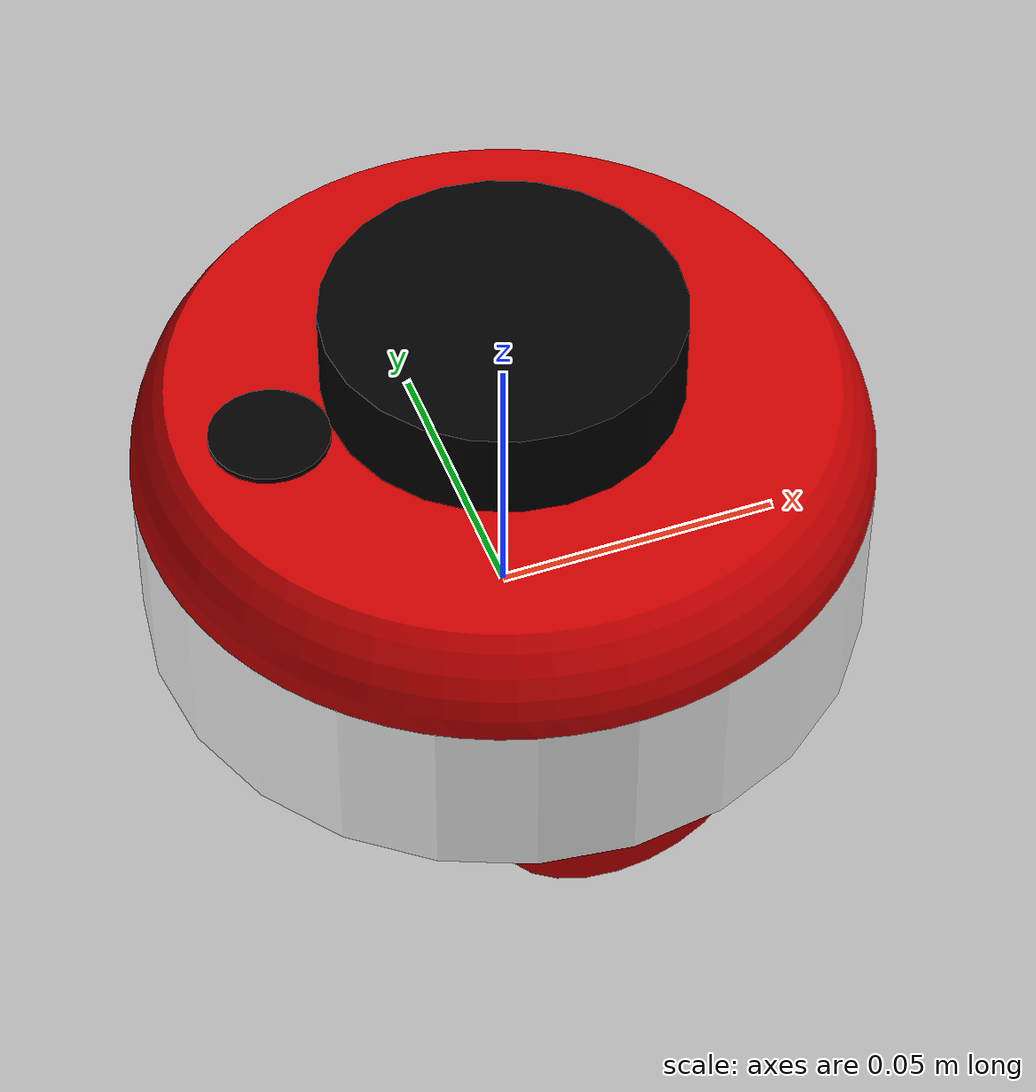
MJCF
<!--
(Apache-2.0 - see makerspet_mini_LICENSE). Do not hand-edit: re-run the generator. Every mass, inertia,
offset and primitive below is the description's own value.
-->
<mujoco model="makerspet_mini">
  <compiler angle="radian" meshdir="meshes" autolimits="true"/>

  <default>
    <default class="makerspet_mini">
      <default class="visual">
        <geom contype="0" conaffinity="0" group="2"/>
      </default>
      <default class="collision">
        <geom group="3" rgba="0.6 0.1 0.1 0.35"/>
      </default>
      <default class="wheel_collision">
        <geom type="cylinder" group="3" rgba="0.05 0.05 0.05 0.4" friction="1.0 0.005 0.0001"/>
      </default>
      <default class="caster_collision">
        <geom group="3" rgba="0.6 0.1 0.1 0.35" friction="0.05 0.005 0.0001" priority="2"/>
      </default>
      <default class="wheel">
        <joint axis="0 0 1" damping="0.001" armature="0.002"/>
      </default>
    </default>
  </default>

  <asset>
    <material name="makerspet_mini_black" rgba="0.0 0.0 0.0 1"/>
    <material name="makerspet_mini_blue" rgba="0.0 0.0 0.8 1"/>
    <material name="makerspet_mini_dark" rgba="0.3 0.3 0.3 1"/>
    <material name="makerspet_mini_grey" rgba="0.5 0.5 0.5 1"/>
    <material name="makerspet_mini_red" rgba="0.8 0.0 0.0 1"/>
    <material name="makerspet_mini_white" rgba="1.0 1.0 1.0 1"/>
    <mesh file="hemisphere_scan_gap.stl" scale="0.000124 0.000124 7.76e-05"/>
  </asset>

  <worldbody>
    <body name="base_link" childclass="makerspet_mini">
      <freejoint name="base_free"/>
      <inertial pos="0 0 0" mass="0.25" diaginertia="0.00026158333333333334 0.00026158333333333334 0.00048049999999999997"/>
      <!-- The scan plane and frame: base_scan's, the description's scan_joint rotation at the CAD's height. -->
      <site name="lidar" pos="0 0 0.05735" quat="6.123234e-17 0 -1 0" size="0.005" rgba="1 0 0 0.6"/>
      <site name="base_imu" pos="0 0 0" size="0.005" rgba="0 0 0 0"/>
        <geom class="visual" type="cylinder" size="0.062 0.016" material="makerspet_mini_white" pos="0 0 0.016"/>
        <geom class="collision" type="cylinder" size="0.062 0.016" name="base_link_collision0" pos="0 0 0.016"/>
          <body name="caster_link" pos="-0.051000000000000004 0 -0.0063999999999999994">
            <inertial pos="0 0 0" mass="0.05" diaginertia="1.4450000000000001e-06 1.4450000000000001e-06 1.4450000000000001e-06"/>
            <geom class="visual" type="sphere" size="0.0085" material="makerspet_mini_white" pos="0 0 0"/>
            <geom class="caster_collision" type="sphere" size="0.0085" name="caster_link_collision0" pos="0 0 0"/>
          </body>
          <body name="wheel_left_link" pos="0 0.0525215 0.006599999999999998" quat="0.7071068 -0.7071068 0 0">
            <inertial pos="0 0 0" mass="0.05" diaginertia="5.904166666666667e-06 5.904166666666667e-06 1.155625e-05"/>
            <joint name="wheel_left_joint" class="wheel"/>
            <geom class="visual" type="cylinder" size="0.0215 0.00275" material="makerspet_mini_red" pos="0 0 0"/>
            <geom class="collision" type="cylinder" size="0.0215 0.00275" name="wheel_left_link_collision0" pos="0 0 0"/>
          </body>
          <body name="wheel_right_link" pos="0 -0.0525215 0.006599999999999998" quat="0.7071068 -0.7071068 0 0">
            <inertial pos="0 0 0" mass="0.05" diaginertia="5.904166666666667e-06 5.904166666666667e-06 1.155625e-05"/>
            <joint name="wheel_right_joint" class="wheel"/>
            <geom class="visual" type="cylinder" size="0.0215 0.00275" material="makerspet_mini_red" pos="0 0 0"/>
            <geom class="collision" type="cylinder" size="0.0215 0.00275" name="wheel_right_link_collision0" pos="0 0 0"/>
          </body>
          <body name="base_scan" pos="0.0 0 0.05735" quat="6.123234e-17 0 -1 0">
            <inertial pos="0 0 0" mass="0.15" diaginertia="3.695e-05 3.695e-05 6.749999999999999e-05"/>
            <geom class="visual" type="cylinder" size="0.03 0.008" material="makerspet_mini_black" pos="0 0 0"/>
            <geom class="collision" type="cylinder" size="0.03 0.008" name="base_scan_collision0" pos="0 0 0"/>
            <body name="scan_motor" pos="0.04 0 0.012" quat="6.123234e-17 0 -1 0">
              <inertial pos="0 0 0" mass="0.05" diaginertia="1.6666666666666665e-06 1.6666666666666665e-06 2.5e-06"/>
              <geom class="visual" type="cylinder" size="0.01 0.005" material="makerspet_mini_black" pos="0 0 0"/>
              <geom class="collision" type="cylinder" size="0.01 0.005" name="scan_motor_collision0" pos="0 0 0"/>
            </body>
          </body>
          <body name="head_link" pos="0 0 0.032">
            <inertial pos="0 0 0" mass="0.2" diaginertia="0.0001069888 0.0001069888 0.00015376000000000002"/>
            <geom class="visual" type="mesh" mesh="hemisphere_scan_gap" material="makerspet_mini_red" pos="0 0 0"/>
            <geom class="collision" type="cylinder" size="0.062 0.008675" name="head_link_collision0" pos="0 0 0.008675"/>
          </body>
    </body>
  </worldbody>

  <actuator>
    <velocity name="wheel_left_motor" joint="wheel_left_joint" kv="1.0" ctrlrange="-9 9" forcerange="-0.49 0.49"/>
    <velocity name="wheel_right_motor" joint="wheel_right_joint" kv="1.0" ctrlrange="-9 9" forcerange="-0.49 0.49"/>
  </actuator>

  <keyframe>
    <key name="home" qpos="0 0 0.0149 1 0 0 0  0 0"/>
  </keyframe>
</mujoco>
